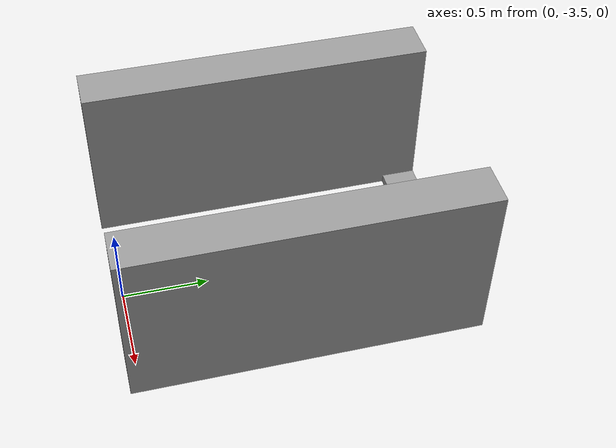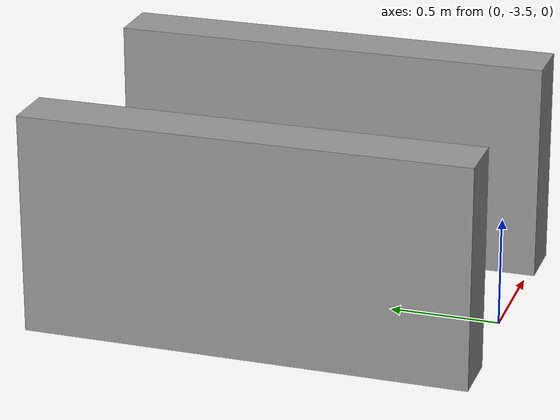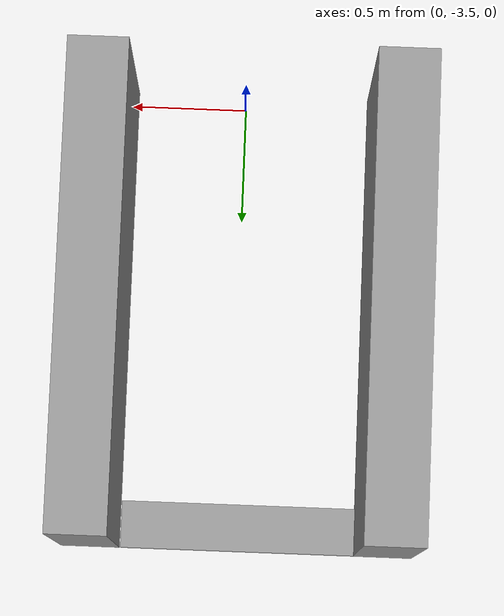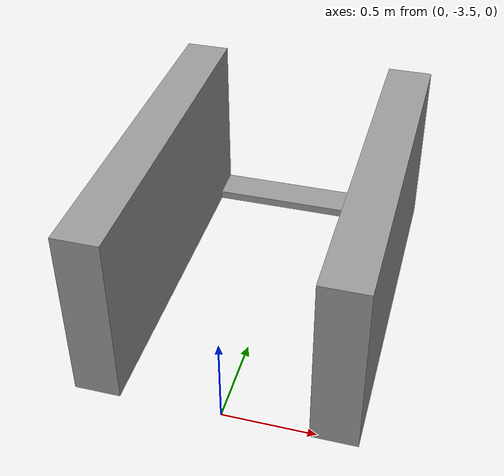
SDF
<sdf version="1.6">
 <world name="default">
  <gravity>0 0 -9.8</gravity>
  <magnetic_field>6e-06 2.3e-05 -4.2e-05</magnetic_field>
  <atmosphere type="adiabatic"/>
  <physics name="default_physics" default="0" type="ode">
   <max_step_size>0.001</max_step_size>
   <real_time_factor>1</real_time_factor>
   <real_time_update_rate>1000</real_time_update_rate>
  </physics>
  <scene><ambient>0.4 0.4 0.4 1</ambient><background>0.7 0.7 0.7 1</background><shadows>1</shadows></scene>
  <spherical_coordinates>
   <surface_model>EARTH_WGS84</surface_model>
   <latitude_deg>0</latitude_deg>
   <longitude_deg>0</longitude_deg>
   <elevation>0</elevation>
   <heading_deg>0</heading_deg>
  </spherical_coordinates>
  <model name="unit_box_0_3">
   <link name="link">
    <inertial>
     <mass>1</mass>
     <inertia>
      <ixx>0.166667</ixx>
      <ixy>0</ixy>
      <ixz>0</ixz>
      <iyy>0.166667</iyy>
      <iyz>0</iyz>
      <izz>0.166667</izz>
     </inertia>
     <pose>1 1 0 0 -0 0</pose>
    </inertial>
    <visual name="visual">
     <geometry><box><size>0.25 2 1</size></box></geometry>
     <material>
      <script><name>Gazebo/Grey</name><uri>file://media/materials/scripts/gazebo.material</uri></script>
      <ambient>0.3 0.3 0.3 1</ambient>
      <diffuse>0.7 0.7 0.7 1</diffuse>
      <specular>0.01 0.01 0.01 1</specular>
      <emissive>0 0 0 1</emissive>
      <shader type="vertex"><normal_map>__default__</normal_map></shader>
     </material>
    </visual>
    <collision name="collision">
     <geometry><box><size>0.25 2 1</size></box></geometry>
     <surface>
      <friction>
       <ode><mu>1</mu><mu2>1</mu2><fdir1>0 0 0</fdir1><slip1>0</slip1><slip2>0</slip2></ode>
       <torsional>
        <coefficient>1</coefficient>
        <patch_radius>0</patch_radius>
        <surface_radius>0</surface_radius>
        <use_patch_radius>1</use_patch_radius>
        <ode><slip>0</slip></ode>
       </torsional>
      </friction>
      <bounce><restitution_coefficient>0</restitution_coefficient><threshold>1e+06</threshold></bounce>
      <contact>
       <collide_without_contact>0</collide_without_contact>
       <collide_without_contact_bitmask>1</collide_without_contact_bitmask>
       <collide_bitmask>1</collide_bitmask>
       <ode>
        <soft_cfm>0</soft_cfm>
        <soft_erp>0.2</soft_erp>
        <kp>1e+13</kp>
        <kd>1</kd>
        <max_vel>0.01</max_vel>
        <min_depth>0</min_depth>
       </ode>
       <bullet>
        <split_impulse>1</split_impulse>
        <split_impulse_penetration_threshold>-0.01</split_impulse_penetration_threshold>
        <soft_cfm>0</soft_cfm>
        <soft_erp>0.2</soft_erp>
        <kp>1e+13</kp>
        <kd>1</kd>
       </bullet>
      </contact>
     </surface>
    </collision>
   </link>
   <static>0</static>
   <pose>-0.658164 -2.55271 0.540573 0 -0 0</pose>
  </model>
  <model name="unit_box_0_3_clone">
   <link name="link">
    <inertial>
     <mass>1</mass>
     <inertia>
      <ixx>0.166667</ixx>
      <ixy>0</ixy>
      <ixz>0</ixz>
      <iyy>0.166667</iyy>
      <iyz>0</iyz>
      <izz>0.166667</izz>
     </inertia>
     <pose>1 1 0 0 -0 0</pose>
    </inertial>
    <visual name="visual">
     <geometry><box><size>0.25 2 1</size></box></geometry>
     <material>
      <script><name>Gazebo/Grey</name><uri>file://media/materials/scripts/gazebo.material</uri></script>
      <ambient>0.3 0.3 0.3 1</ambient>
      <diffuse>0.7 0.7 0.7 1</diffuse>
      <specular>0.01 0.01 0.01 1</specular>
      <emissive>0 0 0 1</emissive>
      <shader type="vertex"><normal_map>__default__</normal_map></shader>
     </material>
    </visual>
    <collision name="collision">
     <geometry><box><size>0.25 2 1</size></box></geometry>
     <surface>
      <friction>
       <ode><mu>1</mu><mu2>1</mu2><fdir1>0 0 0</fdir1><slip1>0</slip1><slip2>0</slip2></ode>
       <torsional>
        <coefficient>1</coefficient>
        <patch_radius>0</patch_radius>
        <surface_radius>0</surface_radius>
        <use_patch_radius>1</use_patch_radius>
        <ode><slip>0</slip></ode>
       </torsional>
      </friction>
      <bounce><restitution_coefficient>0</restitution_coefficient><threshold>1e+06</threshold></bounce>
      <contact>
       <collide_without_contact>0</collide_without_contact>
       <collide_without_contact_bitmask>1</collide_without_contact_bitmask>
       <collide_bitmask>1</collide_bitmask>
       <ode>
        <soft_cfm>0</soft_cfm>
        <soft_erp>0.2</soft_erp>
        <kp>1e+13</kp>
        <kd>1</kd>
        <max_vel>0.01</max_vel>
        <min_depth>0</min_depth>
       </ode>
       <bullet>
        <split_impulse>1</split_impulse>
        <split_impulse_penetration_threshold>-0.01</split_impulse_penetration_threshold>
        <soft_cfm>0</soft_cfm>
        <soft_erp>0.2</soft_erp>
        <kp>1e+13</kp>
        <kd>1</kd>
       </bullet>
      </contact>
     </surface>
    </collision>
   </link>
   <static>0</static>
   <pose>0.596331 -2.55271 0.540573 0 -0 0</pose>
  </model>
  <model name="unit_box_horizontalBar_0">
   <link name="link">
    <pose>0.093915 -0.006073 -0.5504 0 -0 0</pose>
    <inertial>
     <mass>1</mass>
     <inertia>
      <ixx>0.166667</ixx>
      <ixy>0</ixy>
      <ixz>0</ixz>
      <iyy>0.166667</iyy>
      <iyz>0</iyz>
      <izz>0.166667</izz>
     </inertia>
    </inertial>
    <visual name="visual">
     <geometry><box><size>1 0.2 0.05</size></box></geometry>
     <material>
      <script><name>Gazebo/Grey</name><uri>file://media/materials/scripts/gazebo.material</uri></script>
      <ambient>0.3 0.3 0.3 1</ambient>
      <diffuse>0.7 0.7 0.7 1</diffuse>
      <specular>0.01 0.01 0.01 1</specular>
      <emissive>0 0 0 1</emissive>
      <shader type="vertex"><normal_map>__default__</normal_map></shader>
     </material>
    </visual>
    <collision name="collision">
     <geometry><box><size>1 0.2 0.05</size></box></geometry>
     <surface>
      <friction>
       <ode><mu>1</mu><mu2>1</mu2><fdir1>0 0 0</fdir1><slip1>0</slip1><slip2>0</slip2></ode>
       <torsional>
        <coefficient>1</coefficient>
        <patch_radius>0</patch_radius>
        <surface_radius>0</surface_radius>
        <use_patch_radius>1</use_patch_radius>
        <ode><slip>0</slip></ode>
       </torsional>
      </friction>
      <bounce><restitution_coefficient>0</restitution_coefficient><threshold>1e+06</threshold></bounce>
      <contact>
       <collide_without_contact>0</collide_without_contact>
       <collide_without_contact_bitmask>1</collide_without_contact_bitmask>
       <collide_bitmask>1</collide_bitmask>
       <ode>
        <soft_cfm>0</soft_cfm>
        <soft_erp>0.2</soft_erp>
        <kp>1e+13</kp>
        <kd>1</kd>
        <max_vel>0.01</max_vel>
        <min_depth>0</min_depth>
       </ode>
       <bullet>
        <split_impulse>1</split_impulse>
        <split_impulse_penetration_threshold>-0.01</split_impulse_penetration_threshold>
        <soft_cfm>0</soft_cfm>
        <soft_erp>0.2</soft_erp>
        <kp>1e+13</kp>
        <kd>1</kd>
       </bullet>
      </contact>
     </surface>
    </collision>
   </link>
   <static>0</static>
   <pose>-0.127926 -1.64664 0.6153 0 -0 0</pose>
  </model>
 </world>
</sdf>
